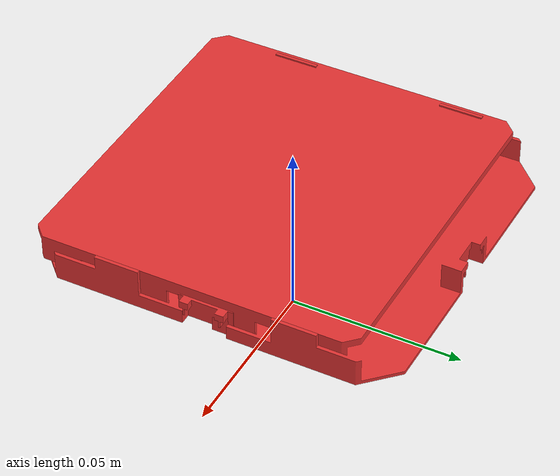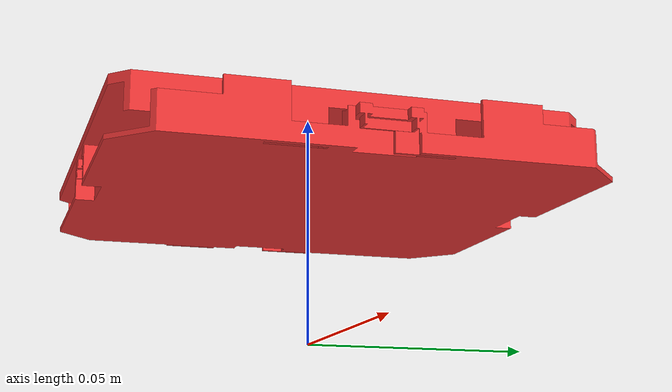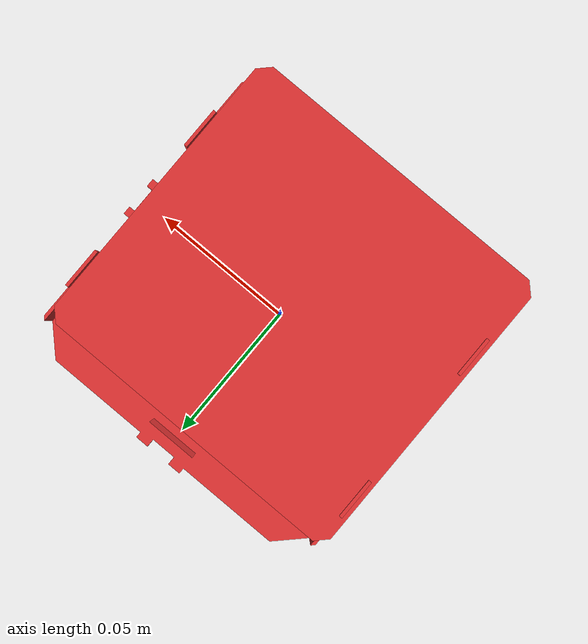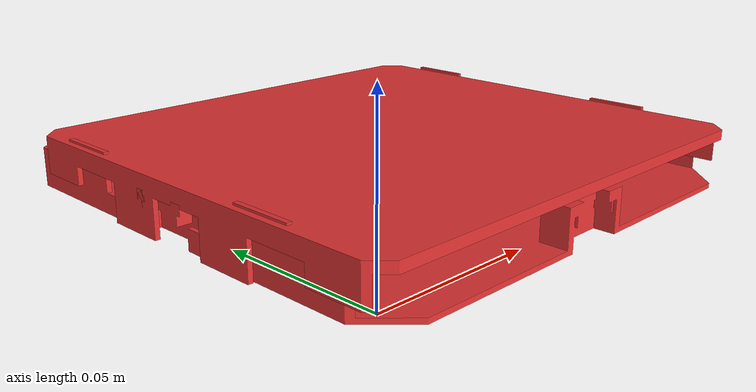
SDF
<?xml version="1.0"?>
<sdf version="1.7">
  <model name="matrix_bottom">
    <link name="base_link">
      <inertial>
        <pose>0 0 0.025 0 0 0 </pose>
        <mass>0.028</mass>
        <inertia>
          <ixx>1.17e-5</ixx>
          <ixy>0</ixy>
          <ixz>0</ixz>
          <iyy>1.9e-5</iyy>
          <iyz>0</iyz>
          <izz>1.9e-5</izz>
        </inertia>
      </inertial>
      <visual name="base_link">
        <pose>-0.05 -0.05 0.03 0 0 0</pose>
        <geometry>
          <mesh>
            <scale>1 1 1</scale>
            <uri>/home/night/apps/rl_envs/planar_gripper/planar_gripper/envs/models/adaptor_bottom.obj</uri>
          </mesh>
        </geometry>
        <material>
          <diffuse>.9 .2 .2 1.0</diffuse>
        </material>
      </visual>

      <visual name="link2">
        <pose>-0.05 -0.05 0.03 0 0 0</pose>
        <geometry>
          <mesh>
            <scale>1 1 1</scale>
            <uri>/home/night/apps/rl_envs/planar_gripper/planar_gripper/envs/models/adaptor_top.obj</uri>
          </mesh>
        </geometry>
        <material>
          <diffuse>.9 .2 .2 1.0</diffuse>
        </material>
      </visual>

      <joint name="tb_link" type="fixed">
        <parent>base_link</parent>
        <child>link2</child>
        <pose>0 0 0 0 0 0</pose>
        <axis>
          <xyz>0 0 1</xyz>
        </axis>
      </joint>

      <collision name="box_collision">
        <pose>0 0 0.035 0 0 0</pose>
        <geometry>
          <box>
            <size>0.1 0.1 0.01</size>
          </box>
        </geometry>
        <material>
          <diffuse>.9 .2 .2 1.0</diffuse>
        </material>
      </collision>

    </link>
  </model>
</sdf>
